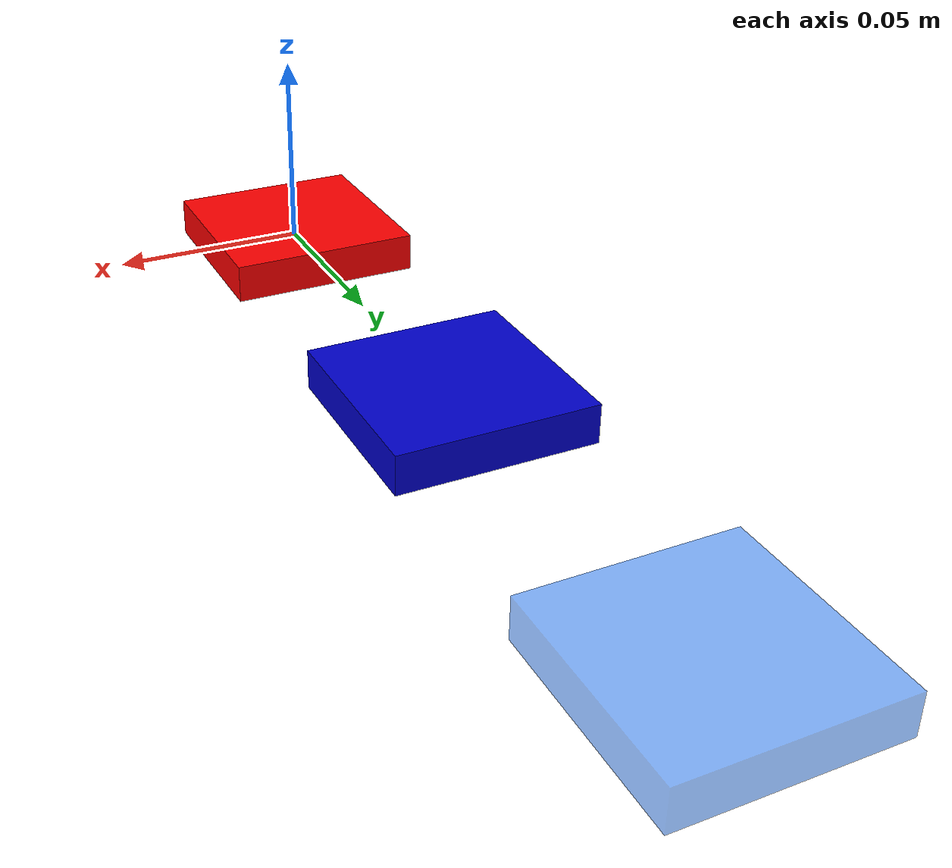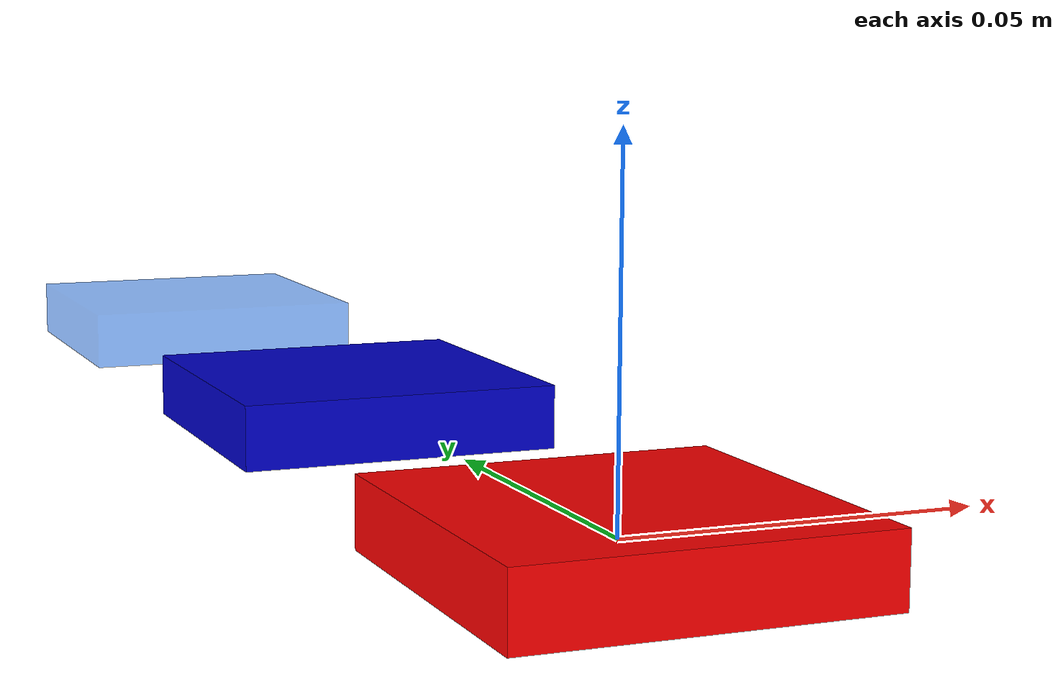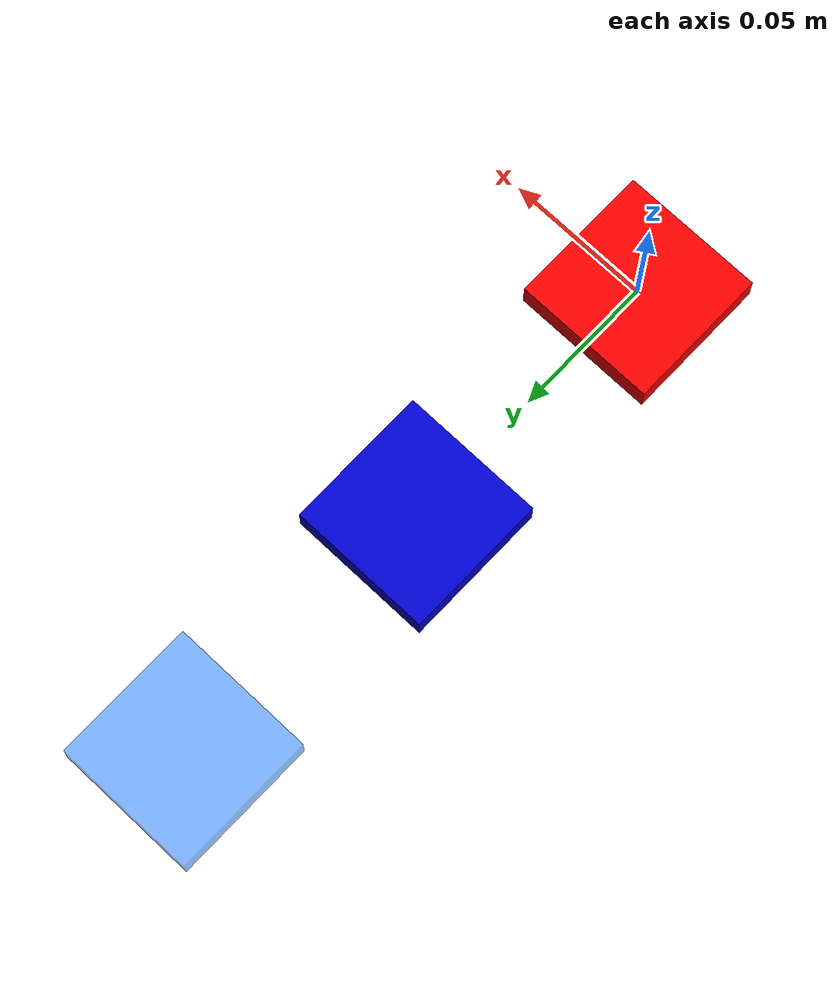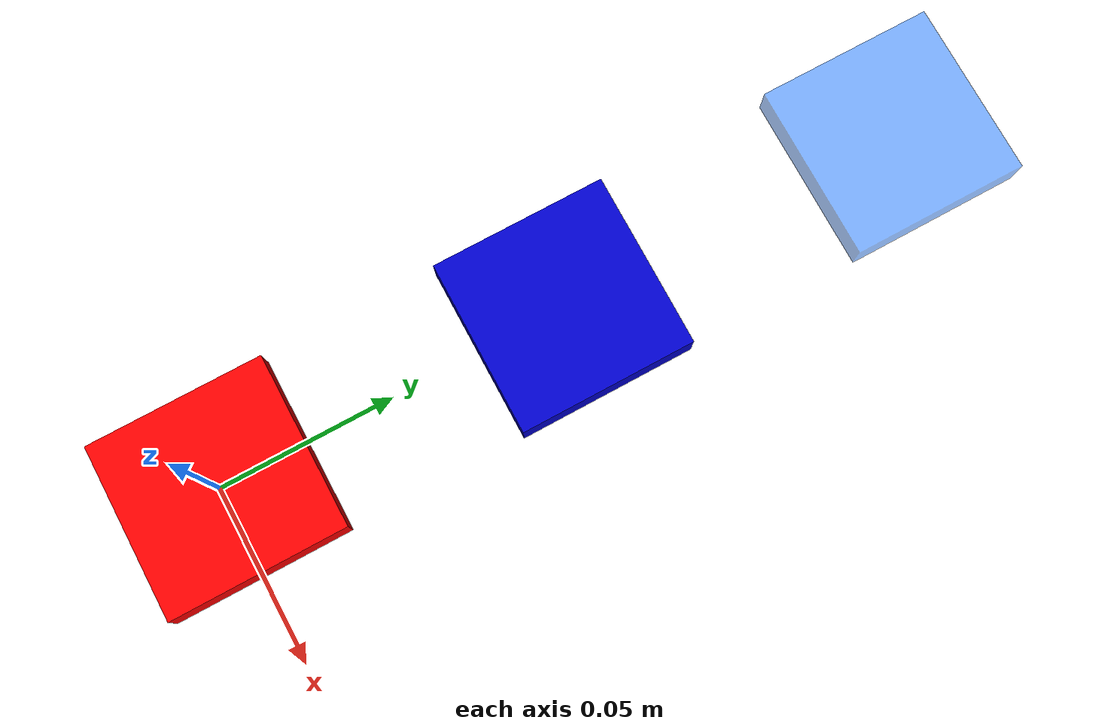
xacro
<?xml version="1.0"?>
<robot xmlns:xacro="http://www.ros.org/wiki/xacro" name="imu3_simple">

	<xacro:property name="pi" value="3.1415926535897931" />
	<xacro:property name="velocity" value="100" />
	<xacro:property name="effort" value="100" />

	<xacro:include filename="$(find imu3_description)/model/materials.urdf.xacro"/>
	<xacro:include filename="$(find imu3_description)/model/imu.urdf.xacro"/>

	<link name="world">
	</link>

	<xacro:imu parent="world" name="imu" position="0 0 0" orientation="0 0 0" />

</robot>

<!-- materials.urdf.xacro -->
<robot>

	<material name="LightGrey">
		<color rgba="0.7 0.7 0.7 1.0"/>
	</material>

	<material name="DarkGrey">
		<color rgba="0.4 0.4 0.4 1.0"/>
	</material>

	<material name="Black">
		<color rgba="0.0 0.0 0.0 1.0"/>
	</material>

	<material name="DarkGolden">
		<color rgba="0.4 0.4 0.3 1.0"/>
	</material>

	<material name="Blue">
		<color rgba="0.0 0.0 0.8 0.9"/>
	</material>

	<material name="LightBlue">
		<color rgba="0.0 0.4 1.0 0.5"/>
	</material>

	<material name="Red">
		<color rgba="1 0 0 0.9"/>
	</material>

</robot>

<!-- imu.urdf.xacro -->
<robot xmlns:xacro="http://ros.org/wiki/xacro">

	<xacro:property name="pi" value="3.1415926535897931" />
	<xacro:property name="velocity" value="100" />
	<xacro:property name="effort" value="100" />

	<!-- macro for 3 IMU -->
	<xacro:macro name="imu" params="parent name position orientation">
		<joint name="${name}_first_joint_roll" type="revolute">
			<origin xyz="${position}" rpy="${orientation}" />
			<parent link="${parent}"/>
			<child link="${name}_first_link_roll"/>
			<axis xyz="1 0 0" />
			<limit lower="${0}" upper="${2*pi}" effort="${effort}" velocity="${velocity}"/>
		</joint>
		<link name="${name}_first_link_roll">
		</link>

		<joint name="${name}_first_joint_pitch" type="revolute">
			<origin xyz="0 0 0" rpy="0 0 0" />
			<parent link="${name}_first_link_roll"/>
			<child link="${name}_first_link_pitch"/>
					<axis xyz="0 1 0" />
					<limit lower="${0}" upper="${2*pi}" effort="${effort}" velocity="${velocity}"/>
			</joint>
		<link name="${name}_first_link_pitch">
		</link>

		<joint name="${name}_first_joint_yaw" type="revolute">
			<origin xyz="0 0 0" rpy="0 0 0" />
			<parent link="${name}_first_link_pitch"/>
			<child link="${name}_first_link_yaw"/>
				<axis xyz="0 0 1" />
				<limit lower="${0}" upper="${2*pi}" effort="${effort}" velocity="${velocity}"/>
		</joint>
		<link name="${name}_first_link_yaw">
			<visual>
				<origin xyz="0 0 0" rpy="0 0 0"/>
				<geometry>
					<box size="0.05 0.05 0.01"/>
				</geometry>
				<material name="Red" />
			</visual>
		</link>

		<joint name="${name}_second_joint_roll" type="revolute">
			<origin xyz="0 0.1 0 " rpy="${orientation}" />
			<parent link="${name}_first_link_yaw"/>
			<child link="${name}_second_link_roll"/>
					<axis xyz="1 0 0" />
				<limit lower="${0}" upper="${2*pi}" effort="${effort}" velocity="${velocity}"/>
			</joint>
		<link name="${name}_second_link_roll">
		</link>

		<joint name="${name}_second_joint_pitch" type="revolute">
			<origin xyz="0 0 0" rpy="0 0 0" />
			<parent link="${name}_second_link_roll"/>
			<child link="${name}_second_link_pitch"/>
					<axis xyz="0 1 0" />
					<limit lower="${0}" upper="${2*pi}" effort="${effort}" velocity="${velocity}"/>
			</joint>
		<link name="${name}_second_link_pitch">
		</link>

		<joint name="${name}_second_joint_yaw" type="revolute">
			<origin xyz="0 0 0" rpy="0 0 0" />
			<parent link="${name}_second_link_pitch"/>
			<child link="${name}_second_link_yaw"/>
				<axis xyz="0 0 1" />
				<limit lower="${0}" upper="${2*pi}" effort="${effort}" velocity="${velocity}"/>
		</joint>
		<link name="${name}_second_link_yaw">
			<visual>
				<origin xyz="0 0 0" rpy="0 0 0"/>
				<geometry>
					<box size="0.05 0.05 0.01"/>
				</geometry>
				<material name="Blue" />
			</visual>
		</link>

		<joint name="${name}_third_joint_roll" type="revolute">
			<origin xyz="0 0.1 0 " rpy="${orientation}" />
			<parent link="${name}_second_link_yaw"/>
			<child link="${name}_third_link_roll"/>
					<axis xyz="1 0 0" />
				<limit lower="${0}" upper="${2*pi}" effort="${effort}" velocity="${velocity}"/>
			</joint>
		<link name="${name}_third_link_roll">
		</link>

		<joint name="${name}_third_joint_pitch" type="revolute">
			<origin xyz="0 0 0" rpy="0 0 0" />
			<parent link="${name}_third_link_roll"/>
			<child link="${name}_third_link_pitch"/>
					<axis xyz="0 1 0" />
					<limit lower="${0}" upper="${2*pi}" effort="${effort}" velocity="${velocity}"/>
			</joint>
		<link name="${name}_third_link_pitch">
		</link>

		<joint name="${name}_third_joint_yaw" type="revolute">
			<origin xyz="0 0 0" rpy="0 0 0" />
			<parent link="${name}_third_link_pitch"/>
			<child link="${name}_third_link_yaw"/>
				<axis xyz="0 0 1" />
				<limit lower="${0}" upper="${2*pi}" effort="${effort}" velocity="${velocity}"/>
		</joint>
		<link name="${name}_third_link_yaw">
			<visual>
				<origin xyz="0 0 0" rpy="0 0 0"/>
				<geometry>
					<box size="0.05 0.05 0.01"/>
				</geometry>
				<material name="LightBlue" />
			</visual>
		</link>

	</xacro:macro> <!-- end xacro for 3 IMU -->

</robot>
